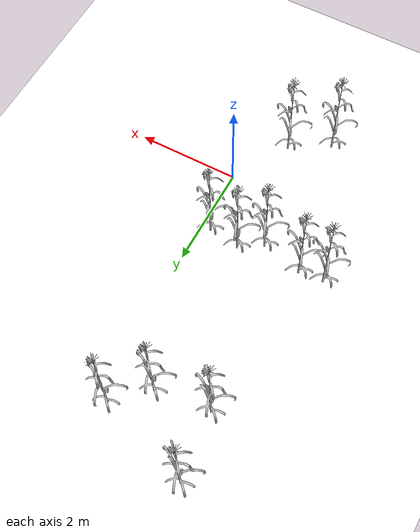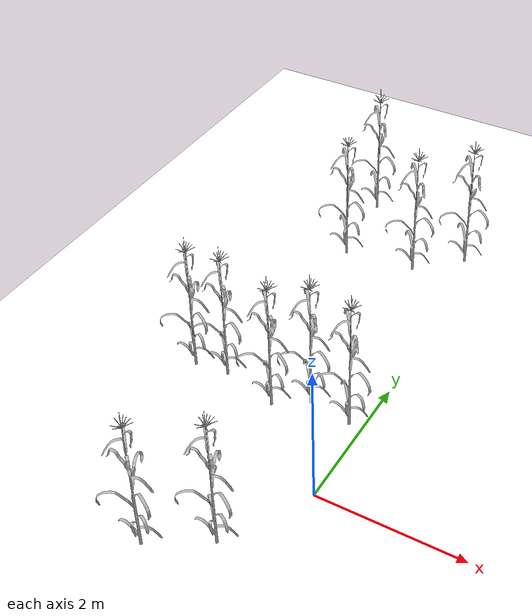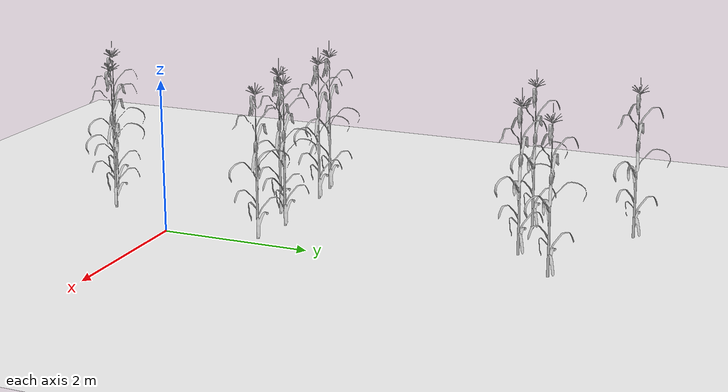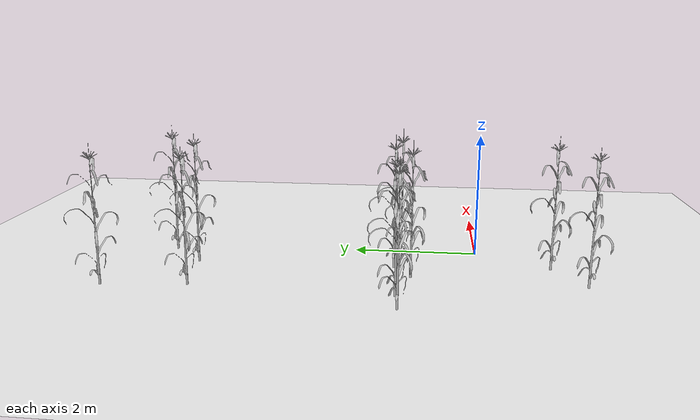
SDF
<sdf version="1.6">
 <world name="default">
  <model name="terrain2">
   <static>1</static>
   <link name="terrain2_link">
    <collision name="collision">
     <geometry><mesh><uri>model://terrain2/meshes/model.dae</uri><scale>4 4 1</scale></mesh></geometry>
     <surface><friction><ode><mu>100</mu><mu2>50</mu2></ode></friction></surface>
    </collision>
    <visual name="terrain2_mesh">
     <geometry><mesh><uri>model://terrain2/meshes/model.dae</uri><scale>4 4 1</scale></mesh></geometry>
    </visual>
    <velocity_decay><linear>0</linear><angular>0</angular></velocity_decay>
   </link>
   <pose>-0.046366 0.055288 0 0 -0 0</pose>
  </model>
  <model name="corn_stalk2_clone_32">
   <static>1</static>
   <link name="corn_stalk2_link">
    <collision name="collision">
     <geometry><mesh><scale>1 1 1</scale><uri>model://corn_type2/meshes/model.stl</uri></mesh></geometry>
    </collision>
    <visual name="corn_stalk2_visual">
     <geometry><mesh><uri>model://corn_type2/meshes/model.stl</uri><scale>1 1 1</scale></mesh></geometry>
     <material>
      <script>
       <uri>model://corn_type2/materials/scripts</uri>
       <uri>model://corn_type2/materials/textures</uri>
       <name>corn_type2/Diffuse</name>
      </script>
     </material>
    </visual>
   </link>
   <pose>-1.37543 -1.57289 0 0 -0 0</pose>
  </model>
  <model name="corn_stalk2_clone_41">
   <static>1</static>
   <link name="corn_stalk2_link">
    <collision name="collision">
     <geometry><mesh><scale>1 1 1</scale><uri>model://corn_type2/meshes/model.stl</uri></mesh></geometry>
    </collision>
    <visual name="corn_stalk2_visual">
     <geometry><mesh><uri>model://corn_type2/meshes/model.stl</uri><scale>1 1 1</scale></mesh></geometry>
     <material>
      <script>
       <uri>model://corn_type2/materials/scripts</uri>
       <uri>model://corn_type2/materials/textures</uri>
       <name>corn_type2/Diffuse</name>
      </script>
     </material>
    </visual>
   </link>
   <pose>-2.04081 1.25733 0 0 -0 0</pose>
  </model>
  <model name="corn_stalk2_clone_42">
   <static>1</static>
   <link name="corn_stalk2_link">
    <collision name="collision">
     <geometry><mesh><scale>1 1 1</scale><uri>model://corn_type2/meshes/model.stl</uri></mesh></geometry>
    </collision>
    <visual name="corn_stalk2_visual">
     <geometry><mesh><uri>model://corn_type2/meshes/model.stl</uri><scale>1 1 1</scale></mesh></geometry>
     <material>
      <script>
       <uri>model://corn_type2/materials/scripts</uri>
       <uri>model://corn_type2/materials/textures</uri>
       <name>corn_type2/Diffuse</name>
      </script>
     </material>
    </visual>
   </link>
   <pose>-0.797937 1.32957 0 0 -0 0</pose>
  </model>
  <model name="corn_stalk2_clone_56">
   <static>1</static>
   <link name="corn_stalk2_link">
    <collision name="collision">
     <geometry><mesh><scale>1 1 1</scale><uri>model://corn_type2/meshes/model.stl</uri></mesh></geometry>
    </collision>
    <visual name="corn_stalk2_visual">
     <geometry><mesh><uri>model://corn_type2/meshes/model.stl</uri><scale>1 1 1</scale></mesh></geometry>
     <material>
      <script>
       <uri>model://corn_type2/materials/scripts</uri>
       <uri>model://corn_type2/materials/textures</uri>
       <name>corn_type2/Diffuse</name>
      </script>
     </material>
    </visual>
   </link>
   <pose>-0.266925 5.05225 0 0 -0 0</pose>
  </model>
  <model name="corn_stalk2_clone_57">
   <static>1</static>
   <link name="corn_stalk2_link">
    <collision name="collision">
     <geometry><mesh><scale>1 1 1</scale><uri>model://corn_type2/meshes/model.stl</uri></mesh></geometry>
    </collision>
    <visual name="corn_stalk2_visual">
     <geometry><mesh><uri>model://corn_type2/meshes/model.stl</uri><scale>1 1 1</scale></mesh></geometry>
     <material>
      <script>
       <uri>model://corn_type2/materials/scripts</uri>
       <uri>model://corn_type2/materials/textures</uri>
       <name>corn_type2/Diffuse</name>
      </script>
     </material>
    </visual>
   </link>
   <pose>-0.870551 4.49479 0 0 -0 0</pose>
  </model>
  <model name="corn_stalk2_clone_58">
   <static>1</static>
   <link name="corn_stalk2_link">
    <collision name="collision">
     <geometry><mesh><scale>1 1 1</scale><uri>model://corn_type2/meshes/model.stl</uri></mesh></geometry>
    </collision>
    <visual name="corn_stalk2_visual">
     <geometry><mesh><uri>model://corn_type2/meshes/model.stl</uri><scale>1 1 1</scale></mesh></geometry>
     <material>
      <script>
       <uri>model://corn_type2/materials/scripts</uri>
       <uri>model://corn_type2/materials/textures</uri>
       <name>corn_type2/Diffuse</name>
      </script>
     </material>
    </visual>
   </link>
   <pose>-1.91596 4.36629 0 0 -0 0</pose>
  </model>
  <model name="corn_stalk2_0_clone">
   <static>1</static>
   <link name="corn_stalk2_link">
    <collision name="collision">
     <geometry><mesh><scale>1 1 1</scale><uri>model://corn_type2/meshes/model.stl</uri></mesh></geometry>
    </collision>
    <visual name="corn_stalk2_visual">
     <geometry><mesh><uri>model://corn_type2/meshes/model.stl</uri><scale>1 1 1</scale></mesh></geometry>
     <material>
      <script>
       <uri>model://corn_type2/materials/scripts</uri>
       <uri>model://corn_type2/materials/textures</uri>
       <name>corn_type2/Diffuse</name>
      </script>
     </material>
    </visual>
   </link>
   <pose>-2.06365 5.66743 0 0 -0 0</pose>
  </model>
  <model name="corn_stalk2_0_clone_1">
   <static>1</static>
   <link name="corn_stalk2_link">
    <collision name="collision">
     <geometry><mesh><scale>1 1 1</scale><uri>model://corn_type2/meshes/model.stl</uri></mesh></geometry>
    </collision>
    <visual name="corn_stalk2_visual">
     <geometry><mesh><uri>model://corn_type2/meshes/model.stl</uri><scale>1 1 1</scale></mesh></geometry>
     <material>
      <script>
       <uri>model://corn_type2/materials/scripts</uri>
       <uri>model://corn_type2/materials/textures</uri>
       <name>corn_type2/Diffuse</name>
      </script>
     </material>
    </visual>
   </link>
   <pose>-2.51747 1.20959 0 0 -0 0</pose>
  </model>
  <model name="corn_stalk2_0_clone_2">
   <static>1</static>
   <link name="corn_stalk2_link">
    <collision name="collision">
     <geometry><mesh><scale>1 1 1</scale><uri>model://corn_type2/meshes/model.stl</uri></mesh></geometry>
    </collision>
    <visual name="corn_stalk2_visual">
     <geometry><mesh><uri>model://corn_type2/meshes/model.stl</uri><scale>1 1 1</scale></mesh></geometry>
     <material>
      <script>
       <uri>model://corn_type2/materials/scripts</uri>
       <uri>model://corn_type2/materials/textures</uri>
       <name>corn_type2/Diffuse</name>
      </script>
     </material>
    </visual>
   </link>
   <pose>-1.23422 1.05615 0 0 -0 0</pose>
  </model>
  <model name="corn_stalk2_0_clone_3">
   <static>1</static>
   <link name="corn_stalk2_link">
    <collision name="collision">
     <geometry><mesh><scale>1 1 1</scale><uri>model://corn_type2/meshes/model.stl</uri></mesh></geometry>
    </collision>
    <visual name="corn_stalk2_visual">
     <geometry><mesh><uri>model://corn_type2/meshes/model.stl</uri><scale>1 1 1</scale></mesh></geometry>
     <material>
      <script>
       <uri>model://corn_type2/materials/scripts</uri>
       <uri>model://corn_type2/materials/textures</uri>
       <name>corn_type2/Diffuse</name>
      </script>
     </material>
    </visual>
   </link>
   <pose>-0.187351 1.23493 0 0 -0 0</pose>
  </model>
  <model name="corn_stalk2_0_clone_17">
   <static>1</static>
   <link name="corn_stalk2_link">
    <collision name="collision">
     <geometry><mesh><scale>1 1 1</scale><uri>model://corn_type2/meshes/model.stl</uri></mesh></geometry>
    </collision>
    <visual name="corn_stalk2_visual">
     <geometry><mesh><uri>model://corn_type2/meshes/model.stl</uri><scale>1 1 1</scale></mesh></geometry>
     <material>
      <script>
       <uri>model://corn_type2/materials/scripts</uri>
       <uri>model://corn_type2/materials/textures</uri>
       <name>corn_type2/Diffuse</name>
      </script>
     </material>
    </visual>
   </link>
   <pose>-0.627936 -1.1344 0 0 -0 0</pose>
  </model>
 </world>
</sdf>
